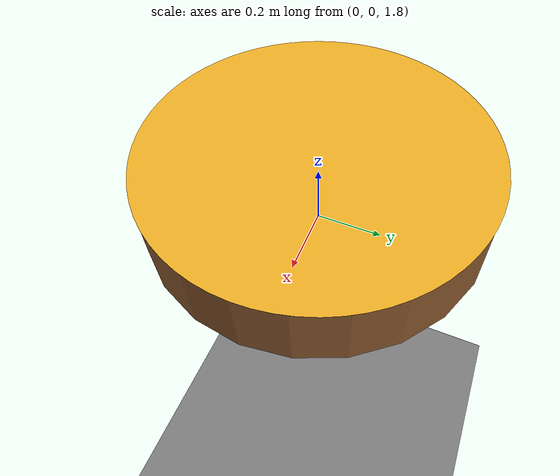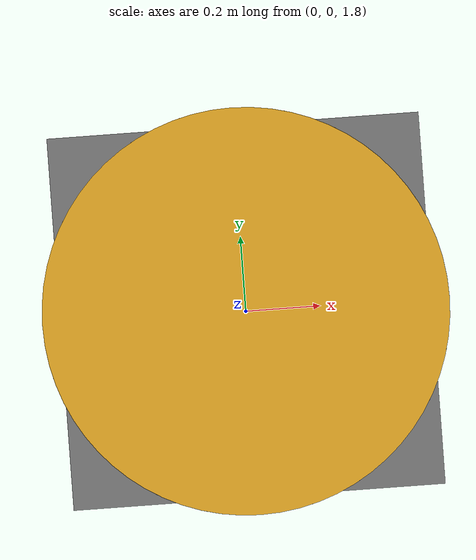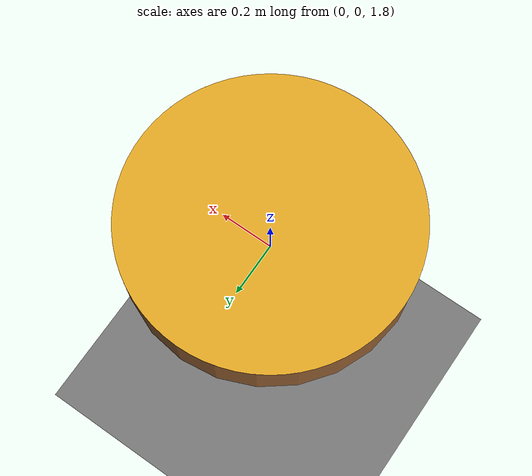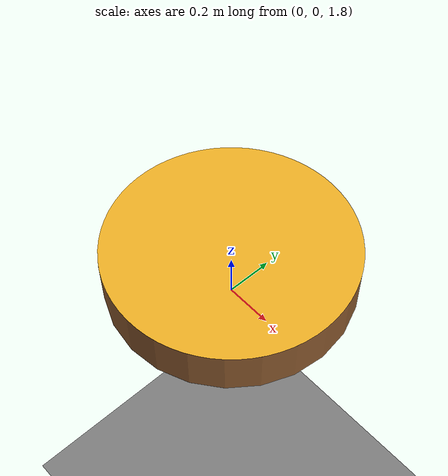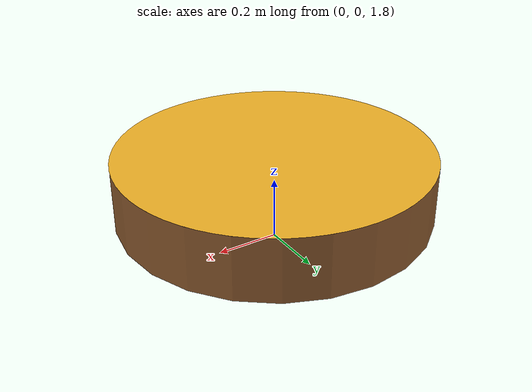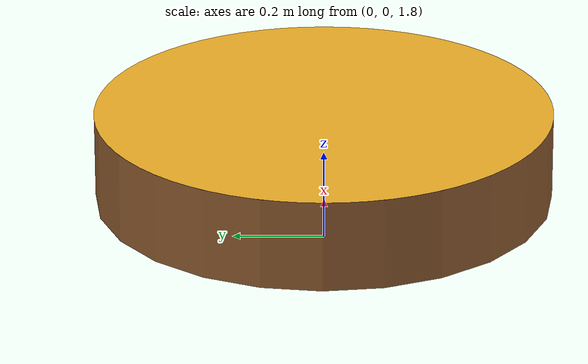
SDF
<sdf version="1.9">
<world name="bee_platform">
	<physics name="1ms" type="ignored">
	<max_step_size>0.004</max_step_size>
	<real_time_factor>1.0</real_time_factor>
	</physics>
	<magnetic_field>5.5645e-06 2.28758e-05 -4.23884e-05</magnetic_field>

	<wind>
		<linear_velocity>0.0 0.0 0.0</linear_velocity>
	</wind>

	<plugin filename="gz-sim-physics-system" name="gz::sim::systems::Physics"/>
	<plugin filename="gz-sim-scene-broadcaster-system" name="gz::sim::systems::SceneBroadcaster"/>
	<plugin filename="gz-sim-user-commands-system" name="gz::sim::systems::UserCommands"/>
	<plugin filename="gz-sim-sensors-system" name="gz::sim::systems::Sensors"/>
	<plugin filename="gz-sim-contact-system" name="gz::sim::systems::Contact"/>
	<plugin filename="gz-sim-imu-system" name="gz::sim::systems::Imu"/>
	<plugin filename="gz-sim-air-pressure-system" name="gz::sim::systems::AirPressure"/>
	<plugin filename="gz-sim-magnetometer-system" name="gz::sim::systems::Magnetometer"/>
	<plugin filename="gz-sim-navsat-system" name="gz::sim::systems::NavSat"/>

	<spherical_coordinates>
	<surface_model>EARTH_WGS84</surface_model>
	<world_frame_orientation>ENU</world_frame_orientation>
	<latitude_deg>43.5297</latitude_deg>
	<longitude_deg>5.4474</longitude_deg>
	<elevation>0</elevation>
	<heading_deg>0</heading_deg>
	</spherical_coordinates>

	<light name="sun" type="directional">
	<cast_shadows>true</cast_shadows>
	<pose>0 0 10 0 0 0</pose>
	<diffuse>0.8 0.8 0.8 1</diffuse>
	<specular>0.2 0.2 0.2 1</specular>
	<direction>-0.5 0.1 -0.9</direction>
	</light>

	<model name="ground_plane">
	<static>true</static>
	<link name="ground_link">
		<collision name="collision">
		<geometry>
			<plane>
			<normal>0 0 1</normal>
			<size>2000 2000</size>
			</plane>
		</geometry>
		</collision>
		<visual name="visual">
		<geometry>
			<plane>
			<normal>0 0 1</normal>
			<size>2000 2000</size>
			</plane>
		</geometry>
		<material>
			<ambient>0.5 0.5 0.5 1</ambient>
			<diffuse>0.5 0.5 0.5 1</diffuse>
			<specular>0.0 0.0 0.0 1</specular>
			<pbr>
			<metal>
				<albedo_map>materials/textures/ground_grey.png</albedo_map>
				<!-- NO normal map -->
				<metalness>0.0</metalness>
				<roughness>1</roughness>
			</metal>
			</pbr>
		</material>
		</visual>
	</link>
	</model>

	<model name="bee_platform">
	<pose>0 0 2 0 0 0</pose>
	<static>false</static>

	<link name="platform_link">
	<gravity>false</gravity>
	<inertial>
		<mass>1000.0</mass>
		<inertia>
		<ixx>100.0</ixx>
		<iyy>100.0</iyy>
		<izz>100.0</izz>
		<ixy>0.0</ixy>
		<ixz>0.0</ixz>
		<iyz>0.0</iyz>
		</inertia>
	</inertial>
	<visual name="visual_body">
		<geometry>
		<cylinder>
			<radius>0.5</radius>
			<length>0.2</length>
		</cylinder>
		</geometry>
		<material>
		<ambient>0.55 0.35 0.18 1</ambient>
		<diffuse>0.55 0.35 0.18 1</diffuse>
		<specular>0.2 0.2 0.2 1</specular>
		</material>
	</visual>

	<visual name="visual_top">
		<!-- Slightly above the cylinder's top face (z=+length/2=0.1) to
		     avoid z-fighting with visual_body's cap. -->
		<pose>0 0 0.1005 0 0 0</pose>
		<geometry>
		<mesh>
			<uri>materials/meshes/flower_disc.obj</uri>
			<scale>0.5 0.5 1.0</scale>
		</mesh>
		</geometry>
		<material>
		<ambient>0.95 0.70 0.15 1</ambient>
		<diffuse>0.95 0.70 0.15 1</diffuse>
		<specular>0.2 0.2 0.2 1</specular>
		<pbr>
			<metal>
			<albedo_map>materials/textures/flower_top.png</albedo_map>
			<normal_map>materials/textures/flower_top_normal.png</normal_map>
			<metalness>0.0</metalness>
			<roughness>0.55</roughness>
			</metal>
		</pbr>
		</material>
	</visual>

	<collision name="collision">
		<geometry>
		<cylinder>
			<radius>0.5</radius>
			<length>0.2</length>
		</cylinder>
		</geometry>
		<surface>
		<friction>
			<ode>
			<mu>1.5</mu>
			<mu2>1.5</mu2>
			</ode>
		</friction>
		<contact>
			<ode>
			<kp>1000000</kp>
			<kd>100</kd>
			<max_vel>10.0</max_vel>
			<min_depth>0.001</min_depth>
			</ode>
		</contact>
		</surface>
	</collision>

	<sensor name="deck_contact_sensor" type="contact">
		<always_on>1</always_on>
		<update_rate>100</update_rate>
		<contact>
			<collision>collision</collision>
		</contact>
	</sensor>
	</link>

	<!-- Atmospheric wind.
		Use realistic-ish environmental velocity, but reduce Gazebo's
		linear force coefficient so the drone disturbance remains sensible. -->
	<plugin filename="libWindController.so"
			name="custom::WindController">

		<enabled>true</enabled>
		<seed>42</seed>

		<!-- prevailing wind -->
		<mean_velocity>6.0 0.0 0.0</mean_velocity>

		<!-- slow atmospheric gust, NOT wave-frequency vessel motion -->
		<axis_x>
			<component>
				<amplitude>0.60</amplitude>
				<frequency>0.030</frequency>
				<phase>0.0</phase>
			</component>
		</axis_x>

		<axis_y>
			<component>
				<amplitude>0.25</amplitude>
				<frequency>0.020</frequency>
				<phase>1.2</phase>
			</component>
		</axis_y>

		<axis_z/>

		<max_wind_speed>8.0</max_wind_speed>

		<wind_topic>/world/bee_platform/wind</wind_topic>
		<truth_topic>/bee_land/wind_cmd</truth_topic>
	</plugin>

	<!-- Gazebo's force model is very strong at k=1.
		k=0.08 gives ~0.48 m/s² at 6 m/s when nearly stationary. -->
	<plugin filename="gz-sim-wind-effects-system"
			name="gz::sim::systems::WindEffects">

		<force_approximation_scaling_factor>
			0.08
		</force_approximation_scaling_factor>

		<horizontal>
			<magnitude>
				<time_for_rise>0.004</time_for_rise>
			</magnitude>
			<direction>
				<time_for_rise>0.004</time_for_rise>
			</direction>
		</horizontal>

		<vertical>
			<time_for_rise>0.004</time_for_rise>
		</vertical>
	</plugin>

	<plugin filename="libOscillatingPlatformController.so"
			name="custom::OscillatingPlatformController">

		<link_name>platform_link</link_name>

		<!-- SURGE: waves mainly arriving along X -->
		<axis_x>
			<component>
				<amplitude>0.050</amplitude>
				<frequency>0.10</frequency>
				<phase>1.40</phase>
			</component>
			<component>
				<amplitude>0.040</amplitude>
				<frequency>0.16</frequency>
				<phase>3.00</phase>
			</component>
			<component>
				<amplitude>0.020</amplitude>
				<frequency>0.22</frequency>
				<phase>5.40</phase>
			</component>
		</axis_x>

		<!-- SWAY: smaller response for nearly head-on sea -->
		<axis_y>
			<component>
				<amplitude>0.015</amplitude>
				<frequency>0.10</frequency>
				<phase>1.90</phase>
			</component>
			<component>
				<amplitude>0.015</amplitude>
				<frequency>0.16</frequency>
				<phase>3.50</phase>
			</component>
			<component>
				<amplitude>0.010</amplitude>
				<frequency>0.22</frequency>
				<phase>5.90</phase>
			</component>
		</axis_y>

		<!-- HEAVE: strongest translational wave response -->
		<axis_z>
			<component>
				<amplitude>0.20</amplitude>
				<frequency>0.10</frequency>
				<phase>0.50</phase>
			</component>
			<component>
				<amplitude>0.50</amplitude>
				<frequency>0.20</frequency>
				<phase>2.10</phase>
			</component>
			<component>
				<amplitude>0.10</amplitude>
				<frequency>0.25</frequency>
				<phase>4.50</phase>
			</component>
		</axis_z>

		<!-- Small roll from slightly oblique sea -->
		<axis_roll>
			<component>
				<amplitude>0.0087</amplitude> <!-- 0.5 deg -->
				<frequency>0.10</frequency>
				<phase>1.60</phase>
			</component>
			<component>
				<amplitude>0.0140</amplitude> <!-- 0.8 deg -->
				<frequency>0.16</frequency>
				<phase>3.20</phase>
			</component>
			<component>
				<amplitude>0.0052</amplitude> <!-- 0.3 deg -->
				<frequency>0.22</frequency>
				<phase>5.60</phase>
			</component>
		</axis_roll>

		<!-- Pitch naturally stronger in a mainly head-on sea -->
		<axis_pitch>
			<component>
				<amplitude>0.0175</amplitude> <!-- 1.0 deg -->
				<frequency>0.10</frequency>
				<phase>0.90</phase>
			</component>
			<component>
				<amplitude>0.0349</amplitude> <!-- 2.0 deg -->
				<frequency>0.16</frequency>
				<phase>2.50</phase>
			</component>
			<component>
				<amplitude>0.0122</amplitude> <!-- 0.7 deg -->
				<frequency>0.22</frequency>
				<phase>4.90</phase>
			</component>
		</axis_pitch>

		<position_gain>20.0</position_gain>
		<max_linear_velocity>5.0</max_linear_velocity>

		<angular_enabled>true</angular_enabled>
		<angular_gain>10.0</angular_gain>
		<max_angular_velocity>1.0</max_angular_velocity>

	</plugin>

	<plugin filename="gz-sim-touchplugin-system"
		name="gz::sim::systems::TouchPlugin">
		<target>bee_x500</target>
		<namespace>bee_platform</namespace>
		<time>0.01</time>
		<enabled>false</enabled>
	</plugin>

	</model>

	<!-- Gazebo-native landing truth: WORLD plugin, not a model plugin. -->
	<plugin filename="libBeeLandingTruth.so" name="custom::BeeLandingTruth">
	<drone_model>bee_x500_0</drone_model>
	<platform_model>bee_platform</platform_model>

	<drone_base_link>base_link</drone_base_link>
	<camera_link>bee_camera_link</camera_link>
	<platform_link>platform_link</platform_link>

	<!-- True skid undersides, expressed in base_link coordinates. These are the
		physical feet, not the sensing-pad bottom 3 mm below them. -->
	<left_pad_point_base>0 -0.132 -0.227</left_pad_point_base>
	<right_pad_point_base>0 0.132 -0.227</right_pad_point_base>
	<skid_half_length_m>0.125</skid_half_length_m>
	<skid_half_width_m>0.0075</skid_half_width_m>

	<left_contact_topic>
	/world/bee_platform/model/bee_x500_0/link/bee_gear_contact_link/sensor/landing_gear_contact_sensor_left/contact
	</left_contact_topic>

	<right_contact_topic>
	/world/bee_platform/model/bee_x500_0/link/bee_gear_contact_link/sensor/landing_gear_contact_sensor_right/contact
	</right_contact_topic>

	<!-- platform_link origin is at the cylinder centre; top surface is +0.1 m. -->
	<platform_top_offset_m>0.1</platform_top_offset_m>

	<publish_rate_hz>100</publish_rate_hz>
	<truth_topic>/bee_land/truth</truth_topic>

	<!-- Raw contact sensors run at 250 Hz. A short SIM-time dwell rejects a
		one-message contact flicker without introducing wall/RTF dependence. -->
	<contact_confirmation_sec>0.04</contact_confirmation_sec>
	<contact_stale_timeout_sec>0.03</contact_stale_timeout_sec>
	<contact_target_substring>bee_platform</contact_target_substring>

	<!-- The defaults below reconstruct the auto-generated sensor topic names.
		Override left_contact_topic/right_contact_topic only if model names differ. -->
	<gear_link>bee_gear_contact_link</gear_link>
	<left_contact_sensor>landing_gear_contact_sensor_left</left_contact_sensor>
	<right_contact_sensor>landing_gear_contact_sensor_right</right_contact_sensor>

	<divergence_min_distance_m>0.05</divergence_min_distance_m>
	<minimum_view_alignment>0.90</minimum_view_alignment>
	</plugin>
</world>
</sdf>
